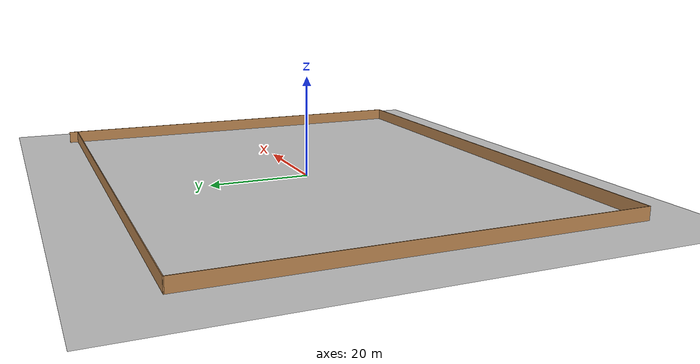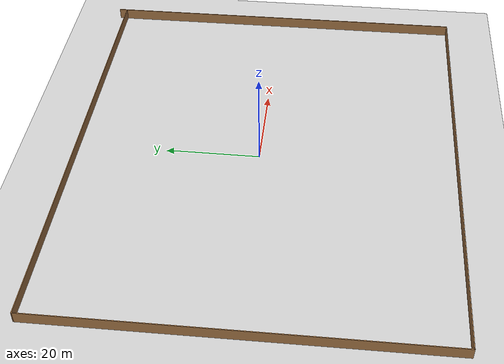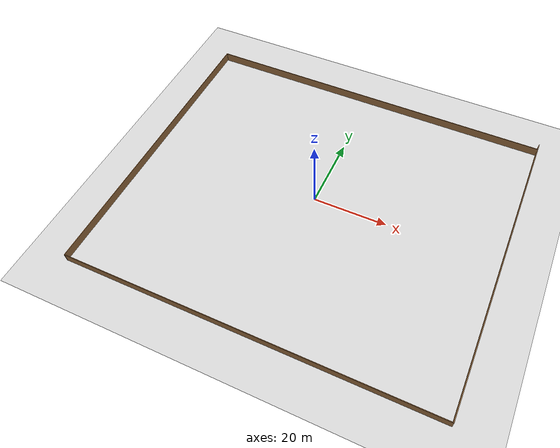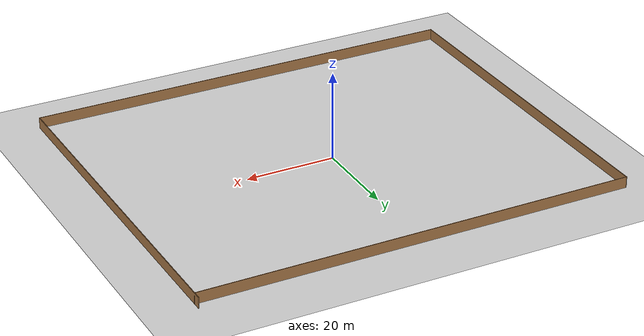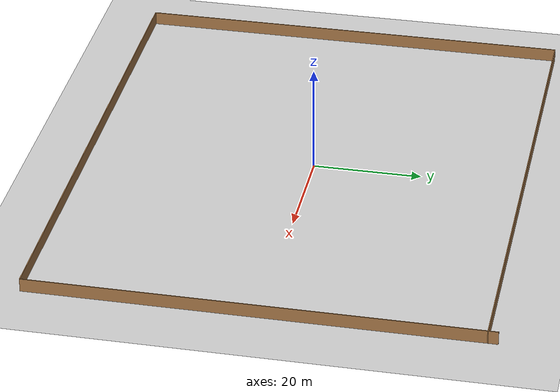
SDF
<sdf version="1.7">
 <world name="default">
  <light name="sun" type="directional">
   <pose>0 0 10 0 -0 0</pose>
   <diffuse>0.8 0.8 0.8 1</diffuse>
   <specular>0.2 0.2 0.2 1</specular>
   <attenuation>
    <range>1000</range>
    <constant>0.9</constant>
    <linear>0.01</linear>
    <quadratic>0.001</quadratic>
   </attenuation>
   <direction>-0.5 0.1 -0.9</direction>
   <spot><inner_angle>0</inner_angle><outer_angle>0</outer_angle><falloff>0</falloff></spot>
  </light>
  <model name="ground_plane">
   <static>1</static>
   <link name="link">
    <collision name="collision">
     <geometry><plane><normal>0 0 1</normal><size>100 100</size></plane></geometry>
     <surface>
      <contact><collide_bitmask>65535</collide_bitmask></contact>
      <friction><ode><mu>100</mu><mu2>50</mu2></ode></friction>
     </surface>
    </collision>
    <visual name="visual">
     <cast_shadows>0</cast_shadows>
     <geometry><plane><normal>0 0 1</normal><size>100 100</size></plane></geometry>
     <material>
      <script><uri>file://media/materials/scripts/gazebo.material</uri><name>Gazebo/Grey</name></script>
     </material>
    </visual>
   </link>
  </model>
  <gravity>0 0 -9.8</gravity>
  <magnetic_field>6e-06 2.3e-05 -4.2e-05</magnetic_field>
  <atmosphere type="adiabatic"/>
  <physics type="ode">
   <max_step_size>0.001</max_step_size>
   <real_time_factor>1</real_time_factor>
   <real_time_update_rate>1000</real_time_update_rate>
  </physics>
  <scene><ambient>0.4 0.4 0.4 1</ambient><background>0.7 0.7 0.7 1</background><shadows>1</shadows></scene>
  <spherical_coordinates>
   <surface_model>EARTH_WGS84</surface_model>
   <latitude_deg>0</latitude_deg>
   <longitude_deg>0</longitude_deg>
   <elevation>0</elevation>
   <heading_deg>0</heading_deg>
  </spherical_coordinates>
  <model name="Untitled">
   <pose>6.96109 -0.440051 0 0 -0 0</pose>
   <link name="Wall_0">
    <collision name="Wall_0_Collision">
     <geometry><box><size>81 0.15 2.5</size></box></geometry>
     <pose>0 0 1.25 0 -0 0</pose>
    </collision>
    <visual name="Wall_0_Visual">
     <pose>0 0 1.25 0 -0 0</pose>
     <geometry><box><size>81 0.15 2.5</size></box></geometry>
     <material>
      <script><uri>file://media/materials/scripts/gazebo.material</uri><name>Gazebo/Wood</name></script>
      <ambient>1 1 1 1</ambient>
     </material>
     <meta><layer>0</layer></meta>
    </visual>
    <pose>-54.9 -0.875001 0 0 -0 -1.5708</pose>
   </link>
   <link name="Wall_1">
    <collision name="Wall_1_Collision">
     <geometry><box><size>98 0.15 2.5</size></box></geometry>
     <pose>0 0 1.25 0 -0 0</pose>
    </collision>
    <visual name="Wall_1_Visual">
     <pose>0 0 1.25 0 -0 0</pose>
     <geometry><box><size>98 0.15 2.5</size></box></geometry>
     <material>
      <script><uri>file://media/materials/scripts/gazebo.material</uri><name>Gazebo/Wood</name></script>
      <ambient>1 1 1 1</ambient>
     </material>
     <meta><layer>0</layer></meta>
    </visual>
    <pose>-5.975 -41.3 0 0 -0 0</pose>
   </link>
   <link name="Wall_12">
    <collision name="Wall_12_Collision">
     <geometry><box><size>98 0.15 2.5</size></box></geometry>
     <pose>0 0 1.25 0 -0 0</pose>
    </collision>
    <visual name="Wall_12_Visual">
     <pose>0 0 1.25 0 -0 0</pose>
     <geometry><box><size>98 0.15 2.5</size></box></geometry>
     <material>
      <script><uri>file://media/materials/scripts/gazebo.material</uri><name>Gazebo/Wood</name></script>
      <ambient>1 1 1 1</ambient>
     </material>
     <meta><layer>0</layer></meta>
    </visual>
    <pose>-5.975 39.55 0 0 -0 0</pose>
   </link>
   <link name="Wall_2">
    <collision name="Wall_2_Collision">
     <geometry><box><size>82.75 0.15 2.5</size></box></geometry>
     <pose>0 0 1.25 0 -0 0</pose>
    </collision>
    <visual name="Wall_2_Visual">
     <pose>0 0 1.25 0 -0 0</pose>
     <geometry><box><size>82.75 0.15 2.5</size></box></geometry>
     <material>
      <script><uri>file://media/materials/scripts/gazebo.material</uri><name>Gazebo/Wood</name></script>
      <ambient>1 1 1 1</ambient>
     </material>
     <meta><layer>0</layer></meta>
    </visual>
    <pose>42.95 -1e-06 0 0 -0 1.5708</pose>
   </link>
   <static>1</static>
  </model>
 </world>
</sdf>
